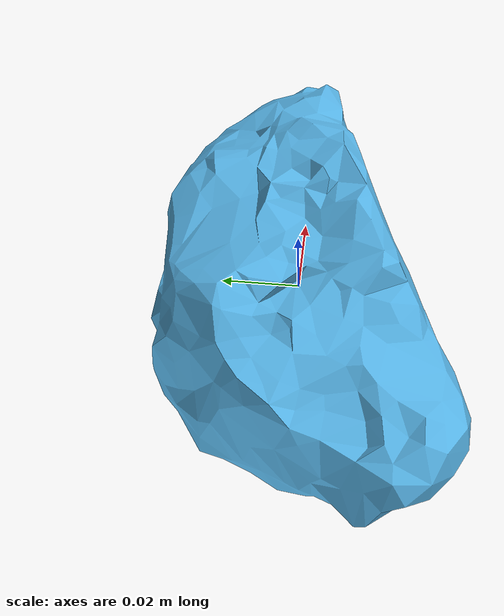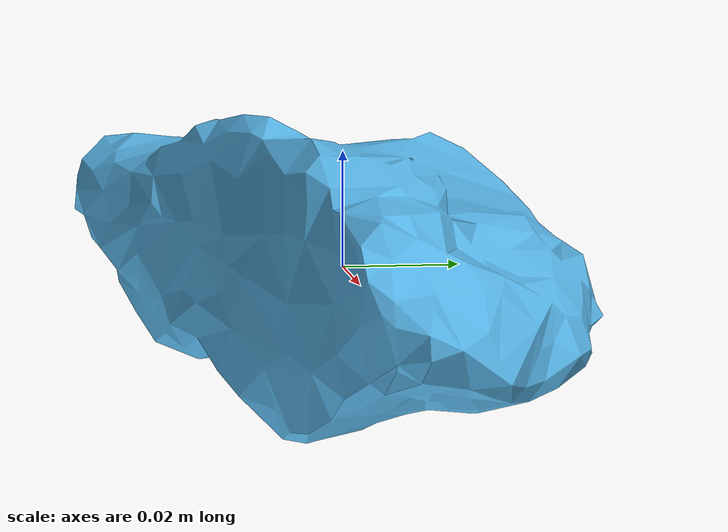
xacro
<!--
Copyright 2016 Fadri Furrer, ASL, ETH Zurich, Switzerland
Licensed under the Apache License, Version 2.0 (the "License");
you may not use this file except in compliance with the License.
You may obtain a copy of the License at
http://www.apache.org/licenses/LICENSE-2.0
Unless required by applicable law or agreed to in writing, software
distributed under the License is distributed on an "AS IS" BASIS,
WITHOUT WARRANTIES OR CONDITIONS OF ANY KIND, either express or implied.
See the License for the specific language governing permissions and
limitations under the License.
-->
<?xml version="1.0"?>

<robot name="stone_1" xmlns:xacro="http://ros.org/wiki/xacro">
  <xacro:property name="mesh_file" value="package://urdf_models/models/stone_1/mesh/stone_1.dae" />
  <xacro:property name="mass" value="0.6" />
  <link name="base_link">
    <inertial>
   	  <mass value="${mass}" />  <!-- [kg] -->
   	  <origin xyz="-0.0000142 0.0000139 0.0000031" />
   	  <inertia ixx="0.08166e-02" ixy="-0.03668e-02" ixz="-0.00031e-02"
                                  iyy="0.20183e-02"  iyz="0.00657e-02"
                                                      izz="0.24189e-02" />
	 </inertial>
  </link>

  <joint name="base_joint" type="fixed">
    <origin xyz="0 0 0" rpy="0 0 0" />
    <parent link="base_link" />
    <child link="base_link_inertia" />
  </joint>

  <link name="base_link_inertia">
  	 <visual>
        <origin xyz="0 0 0" rpy="0 0 0" />
        <geometry>
          <mesh filename="${mesh_file}" scale="1 1 1" />
        </geometry>
   	</visual>

   	<collision>
        <origin xyz="0 0 0" rpy="0 0 0" />
        <geometry>
          <mesh filename="${mesh_file}" scale="1 1 1" />
        </geometry>
  	</collision>
  </link>

  <gazebo reference="base_link_inertia">
    <mu1 value="10.0"/>
    <mu2 value="10.0"/>
    <kp  value="5000000.0" />
    <kd  value="1.0" />
    <fdir1 value="1 0 0"/>
    <collision>
    <surface>
      <bounce>
        <restitution_coefficient>0.1</restitution_coefficient>
        <threshold>0.</threshold>
      </bounce>
      <contact>
        <ode>
          <max_vel>0</max_vel>
          <min_depth>0.001</min_depth>
        </ode>
      </contact>
    </surface>
    </collision>
    <material name="Gray">
      <color rgba="0.8 0.8 0.8 1"/>
    </material>
  </gazebo>

</robot>
